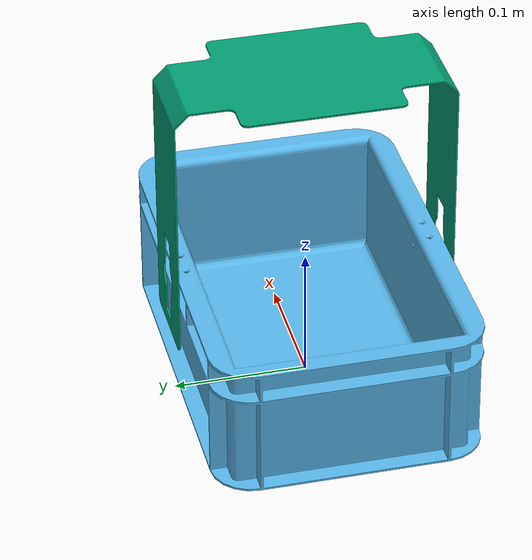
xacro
<?xml version="1.0" ?>
<robot name="box" xmlns:xacro="http://wiki.ros.org/xacro">

  <xacro:include filename="$(find rbkairos_description)/urdf/inertia.urdf.xacro" />

  <xacro:arg name="prefix" default="box_"/>
  <xacro:property name="prefix" value="$(arg prefix)" />

  <link name="${prefix}base_link">
  </link>

  <joint name="${prefix}joint" type="fixed">
    <origin rpy="0 0 0" xyz="0 0 0"/>
    <parent link="${prefix}base_link"/>
    <child link="${prefix}body_box_link"/>
  </joint>

  <link name="${prefix}body_box_link">
    <inertial>
      <mass value="5" />
      <origin xyz="0 0 0.05" />
      <solid_cuboid_inertia m="5" h="0.2" d="0.1" w="0.3"/>
    </inertial>
    <visual>
      <origin rpy="0 0 0" xyz="0 0 0"/>
      <geometry>
        <mesh filename="package://rbkairos_description/urdf/box/meshes/box_base.stl"/>
      </geometry>
    </visual>
    <collision>
      <origin rpy="0 0 0" xyz="0 0 0"/>
      <geometry>
        <mesh filename="package://rbkairos_description/urdf/box/meshes/box_base.stl"/>
      </geometry>
    </collision>
  </link>

  <joint name="${prefix}handle_joint" type="fixed">
    <origin rpy="0 0 0" xyz="0 0 0.1"/>
    <parent link="${prefix}body_box_link"/>
    <child link="${prefix}handle_link"/>
  </joint>

  <link name="${prefix}handle_link">
    <inertial>
      <mass value="0.1" />
      <origin xyz="0 0 0" />
      <solid_cuboid_inertia m="0.1" h="0.2" d="0.01" w="0.3"/>
    </inertial>
    <visual>
      <origin rpy="0 0 0" xyz="0 0 0"/>
      <geometry>
        <mesh filename="package://rbkairos_description/urdf/box/meshes/handle.stl"/>
      </geometry>
    </visual>
    <collision>
      <origin rpy="0 0 0" xyz="0 0 0"/>
      <geometry>
        <mesh filename="package://rbkairos_description/urdf/box/meshes/handle.stl"/>
      </geometry>
    </collision>
  </link>

  <joint name="${prefix}grasping_joint" type="fixed">
    <origin rpy="3.141592 0 0" xyz="0 0 0.25"/>
    <parent link="${prefix}body_box_link"/>
    <child link="${prefix}grasping_link"/>
  </joint>

  <link name="${prefix}grasping_link"/>

      <gazebo reference="${prefix}body_box_link">
      <visual>
        <material>
          <ambient>0.0 0.0 0.0 1.0</ambient>
          <diffuse>0.2 0.2 0.2 1.0</diffuse>
          <specular>0.584313725 0.647058824 0.650980392 1.0</specular>
          <emissive>0.0 0.0 0.0 0.0</emissive>
        </material>
      </visual>
    </gazebo>
      <gazebo reference="${prefix}handle_link">
      <visual>
        <material>
          <ambient>0.0 0.0 0.0 1.0</ambient>
          <diffuse>0.2 0.2 0.2 1.0</diffuse>
          <specular>0.584313725 0.647058824 0.650980392 1.0</specular>
          <emissive>0.0 0.0 0.0 0.0</emissive>
        </material>
      </visual>
    </gazebo>

</robot>

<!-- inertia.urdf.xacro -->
<robot xmlns:xacro="http://wiki.ros.org/xacro">
  <!-- source en.wikipedia.org/wiki/List_of_moments_of_inertia-->

  <!-- TODO Solid sphere of radius r and mass m-->
  <xacro:macro name="solid_sphere_inertia" params="m r">
    <inertia  ixx="${(2*r*r*m)/5}" ixy = "0" ixz = "0"
              iyy="${(2*r*r*m)/5}" iyz = "0"
              izz="${(2*r*r*m)/5}"
     />
  </xacro:macro>

  <!-- TODO Hollow sphere of radius r and mass m-->
  <xacro:macro name="solid_sphere_inertia" params="m r">
    <inertia  ixx="${(2*r*r*m)/3}" ixy = "0" ixz = "0"
              iyy="${(2*r*r*m)/3}" iyz = "0"
              izz="${(2*r*r*m)/3}"
     />
  </xacro:macro>

  <!-- TODO Solid ellipsoid of semi-axes a, b, c and mass m-->
  <xacro:macro name="ellipsoid_semi_axes_inertia" params="a b c m r">
    <inertia  ixx="${(m*(b*b+c*c))/5}" ixy = "0" ixz = "0"
              iyy="${(m*(a*a+c*c))/5}" iyz = "0"
              izz="${(m*(a*a+b*b))/5}"
     />
  </xacro:macro>

  <!-- TODO Right circular cone with radius r, height h and mass m, about the apex -->
  <xacro:macro name="right_circular_cone_inertia" params="m r h">
    <inertia  ixx="${((3*m*(h*h))/5)+((3*m*(r*r))/20)}" ixy = "0" ixz = "0"
              iyy="${((3*m*(h*h))/5)+((3*m*(r*r))/20)}" iyz = "0"
              izz="${(3*m*(r*r))/10}"
     />
  </xacro:macro>

  <!-- TODO Solid cuboid of width w, height h, depth d, and mass m -->
  <!-- yes, axis in solid_cuboid_inertia are changed, w relates to X axis, d to Z axis, and h to Y axis -->
  <!-- Keep this comment -->
  <xacro:macro name="solid_cuboid_inertia" params="m h d w">
    <inertia  ixx="${(m*(h*h+d*d))/12}" ixy = "0" ixz = "0"
              iyy="${(m*(w*w+d*d))/12}" iyz = "0"
              izz="${(m*(w*w+h*h))/12}"
     />
  </xacro:macro>

  <!-- TODO Solid cylinder of radius r, height h and mass m -->
  <xacro:macro name="solid_cylinder_inertia" params="m r h">
    <inertia  ixx="${m*(3*r*r+h*h)/12}" ixy = "0" ixz = "0"
              iyy="${m*(3*r*r+h*h)/12}" iyz = "0"
              izz="${m*r*r/2}"
     />
  </xacro:macro>

    <!-- TODO Thick-walled cylindrical tube with open ends, of inner radius r1, outer radius r2, length h and mass m -->
    <xacro:macro name="thick_walled_cylinder_inertia" params="m r1 r2 h">
    <inertia  ixx="${m*((3*(r1*r1+r2*r2))+(h*h))/12}" ixy = "0" ixz = "0"
              iyy="${m*((3*(r1*r1+r2*r2))+(h*h))/12}" iyz = "0"
              izz="${m*(r1*r1+r2*r2)/2}"
     />
  </xacro:macro>

</robot>
